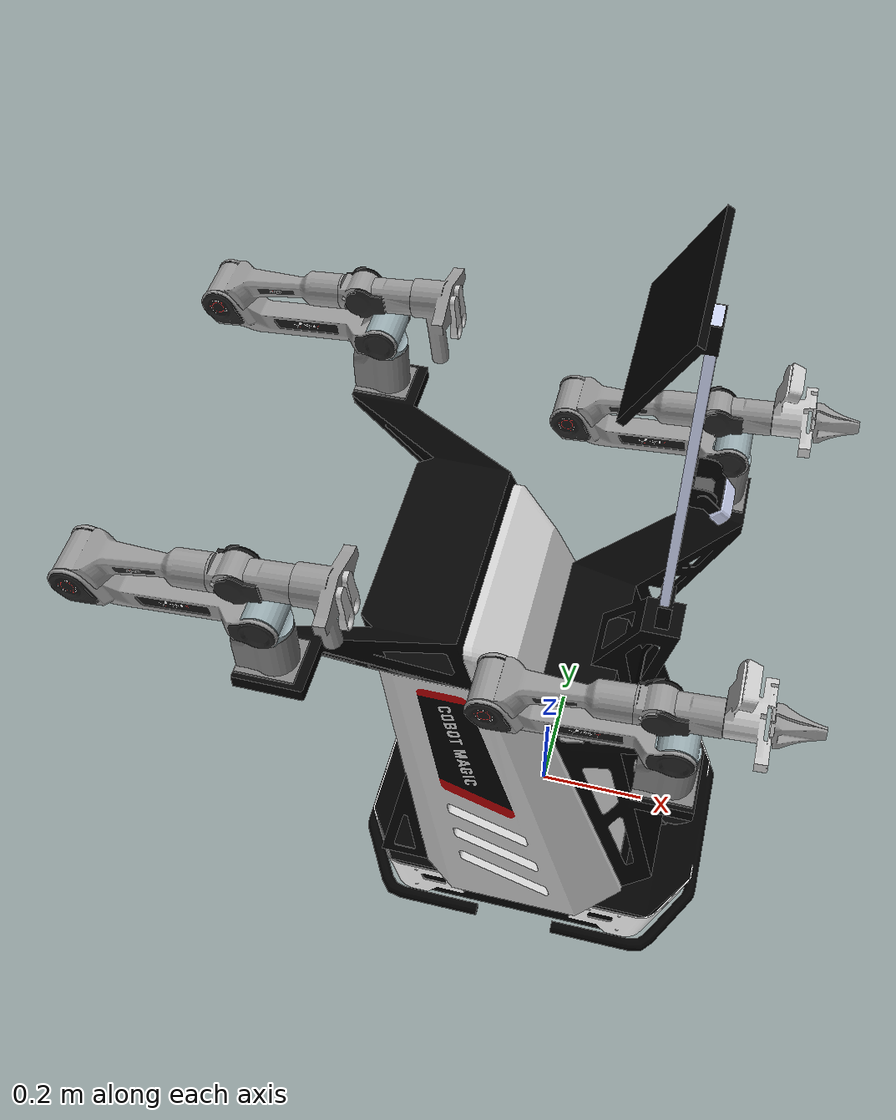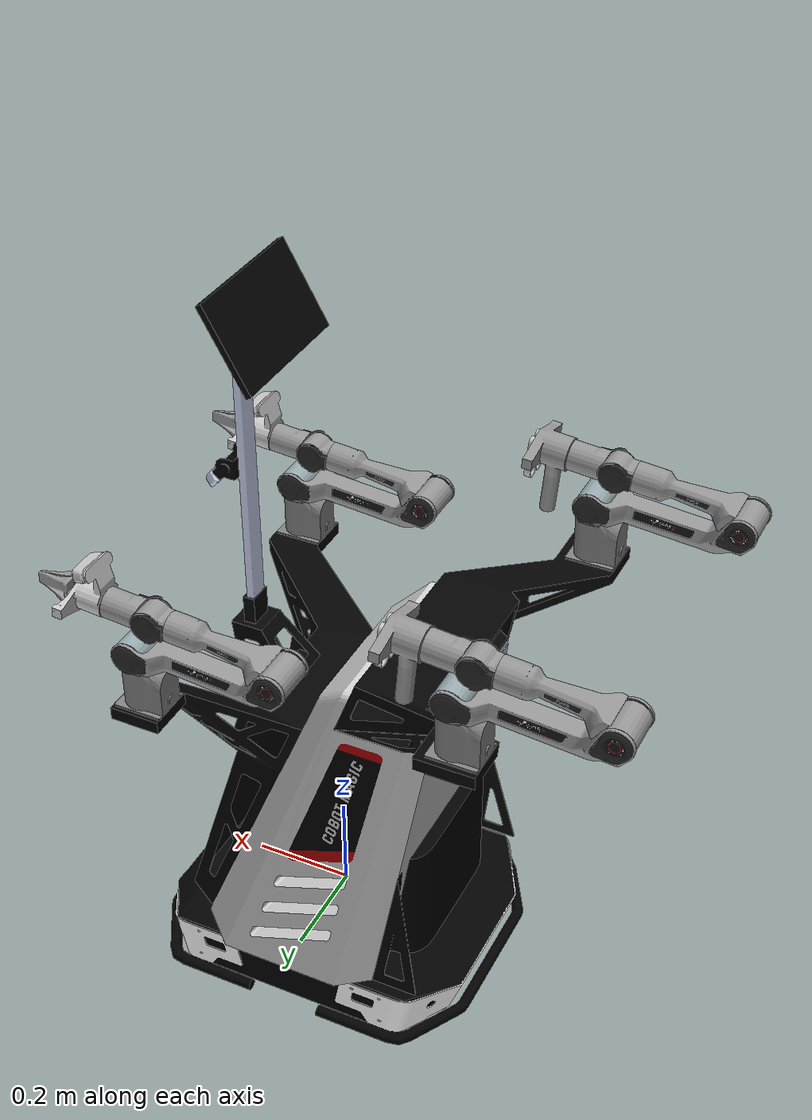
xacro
<?xml version="1.0"?>
<robot name="robot"
  xmlns:xacro="http://www.ros.org/wiki/xacro">

  <xacro:arg name="robot_model" default="agilex" />

  <xacro:property name="robot_model" value="$(arg robot_model)" />

  <!-- ======================== arx (ARX robotics) ======================== -->
  <xacro:if value="${'arx' == robot_model}">
    <xacro:include filename="providers/arx.xacro" />
  </xacro:if>

  <!-- ======================== agilex (Agilex: Aloha, Piper) ======================== -->
  <xacro:if value="${'agilex' == robot_model}">
    <xacro:include filename="providers/agilex.xacro" />
  </xacro:if>

  <!-- ======================== franka (Franka Robotics) ======================== -->
  <xacro:if value="${'franka' == robot_model}">
    <xacro:include filename="providers/franka.xacro" />
  </xacro:if>

  <!-- ======================== genie (AgiBot Genie series, e.g. G2) ======================== -->
  <xacro:if value="${'genie' == robot_model}">
    <xacro:include filename="providers/genie.xacro" />
  </xacro:if>

  <!-- ======================== universal_robots (UR series) ======================== -->
  <xacro:if value="${'universal_robots' == robot_model}">
    <xacro:include filename="providers/universal_robots.xacro" />
  </xacro:if>

  <!-- ======================== generic urdf (any *_description package) ======================== -->
  <xacro:if value="${'urdf' == robot_model}">
    <xacro:include filename="providers/urdf.xacro" />
  </xacro:if>

  <!-- ======================== generic xacro file ======================== -->
  <xacro:if value="${'xacro_file' == robot_model}">
    <xacro:include filename="providers/xacro_file.xacro" />
  </xacro:if>

</robot>

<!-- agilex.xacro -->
<robot xmlns:xacro="http://www.ros.org/wiki/xacro">

  <xacro:arg name="arm"     default="aloha" />
  <xacro:arg name="gripper" default="with_gripper" />

  <xacro:property name="arm"     value="$(arg arm)" />
  <xacro:property name="gripper" value="$(arg gripper)" />

  <xacro:if value="${'aloha' == arm}">
    <xacro:include filename="$(find genie_sim_robot_model)/robots/agilex/aloha/aloha.urdf.xacro" />
  </xacro:if>

  <xacro:if value="${'piper' == arm}">
    <xacro:if value="${'with_gripper' == gripper}">
      <xacro:include filename="$(find genie_sim_robot_model)/robots/agilex/piper/piper.urdf.xacro" />
    </xacro:if>
    <xacro:if value="${'no_gripper' == gripper}">
      <xacro:include filename="$(find genie_sim_robot_model)/robots/agilex/piper/piper_no_gripper.urdf.xacro" />
    </xacro:if>
  </xacro:if>

</robot>

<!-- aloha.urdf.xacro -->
<robot name="agilex_aloha"
  xmlns:xacro="http://www.ros.org/wiki/xacro">

  <xacro:property name="mesh_dir" value="package://genie_sim_robot_model/robots/agilex/aloha/meshes" />

  <xacro:macro name="aloha_arm"
    params="prefix parent mount_xyz mount_rpy gripper_mesh_subdir gripper7_xyz gripper8_xyz gripper7_rpy:='1.5708 0 1.5708' gripper8_rpy:='-1.5708 0 1.5708'">

    <link name="arm_${prefix}_base_link">
      <inertial>
        <origin xyz="-0.00979274765955341 1.82905827587138E-06 0.0410100126360189" rpy="0 0 0" />
        <mass value="0.162548567403693" />
        <inertia ixx="0.000226596924525071" ixy="-7.33972270153965E-08" ixz="2.13249977802622E-06"
          iyy="0.000269444772561524" iyz="8.15169009611054E-09" izz="0.000222318258878636" />
      </inertial>
      <visual>
        <origin xyz="0 0 0" rpy="0 0 0" />
        <geometry>
          <mesh filename="${mesh_dir}/base_link.dae" />
        </geometry>
        <material_override><roughness>0.45</roughness><metallic>0.85</metallic></material_override>
      </visual>
    </link>
    <joint name="arm_${prefix}_base_joint" type="fixed">
      <origin xyz="${mount_xyz}" rpy="${mount_rpy}" />
      <parent link="${parent}" />
      <child link="arm_${prefix}_base_link" />
    </joint>

    <link name="arm_${prefix}_link1">
      <inertial>
        <origin xyz="0.00131676031927024 0.000310288842008612 -0.00922874512303437" rpy="0 0 0" />
        <mass value="0.0978679932242825" />
        <inertia ixx="7.76684558296782E-05" ixy="1.09084650459924E-07" ixz="-1.9748053243241E-06"
          iyy="9.24967780161547E-05" iyz="9.91284646834582E-07" izz="8.24589062407807E-05" />
      </inertial>
      <visual>
        <origin xyz="0 0 0" rpy="0 0 0" />
        <geometry>
          <mesh filename="${mesh_dir}/link1.dae" />
        </geometry>
        <material_override><roughness>0.45</roughness><metallic>0.85</metallic></material_override>
      </visual>
    </link>
    <joint name="arm_${prefix}_joint1" type="revolute">
      <origin xyz="0 0 0.123" rpy="0 0 -1.5708" />
      <parent link="arm_${prefix}_base_link" />
      <child link="arm_${prefix}_link1" />
      <axis xyz="0 0 1" />
      <limit lower="-2.618" upper="2.618" effort="100" velocity="3" />
    </joint>

    <link name="arm_${prefix}_link2">
      <inertial>
        <origin xyz="0.148793602378802 -0.00242026983944119 0.00175154638467948" rpy="0 0 0" />
        <mass value="0.290888938633388" />
        <inertia ixx="0.000148959640166183" ixy="-7.37750384371657E-05" ixz="-9.68688405196236E-07"
          iyy="0.00172800946632652" iyz="-1.09692225564224E-06" izz="0.0017754628344594" />
      </inertial>
      <visual>
        <origin xyz="0 0 0" rpy="0 0 0" />
        <geometry>
          <mesh filename="${mesh_dir}/link2.dae" />
        </geometry>
        <material_override><roughness>0.45</roughness><metallic>0.85</metallic></material_override>
      </visual>
    </link>
    <joint name="arm_${prefix}_joint2" type="revolute">
      <origin xyz="0 0 0" rpy="1.5708 0 -1.5708" />
      <parent link="arm_${prefix}_link1" />
      <child link="arm_${prefix}_link2" />
      <axis xyz="0 0 1" />
      <limit lower="0" upper="3.14" effort="100" velocity="3" />
    </joint>

    <link name="arm_${prefix}_link3">
      <inertial>
        <origin xyz="-0.0996835215213704 0.0349477226691318 0.000508025815507312" rpy="0 0 0" />
        <mass value="0.290847697793211" />
        <inertia ixx="0.000107879011637167" ixy="2.92669521203626E-05" ixz="6.825922326238E-07"
          iyy="0.000214751671792086" iyz="-7.78469047878196E-07" izz="0.000241923439340319" />
      </inertial>
      <visual>
        <origin xyz="0 0 0" rpy="0 0 0" />
        <geometry>
          <mesh filename="${mesh_dir}/link3.dae" />
        </geometry>
        <material_override><roughness>0.45</roughness><metallic>0.85</metallic></material_override>
      </visual>
    </link>
    <joint name="arm_${prefix}_joint3" type="revolute">
      <origin xyz="0.28358 0.028726 0" rpy="0 0 0.10095" />
      <parent link="arm_${prefix}_link2" />
      <child link="arm_${prefix}_link3" />
      <axis xyz="0 0 1" />
      <limit lower="-2.697" upper="0" effort="100" velocity="3" />
    </joint>

    <link name="arm_${prefix}_link4">
      <inertial>
        <origin xyz="0.000276464622387979 -0.00102803669324875 -0.00472830700561663" rpy="0 0 0" />
        <mass value="0.127087348341362" />
        <inertia ixx="3.82011730423416E-05" ixy="-4.92358350897513E-08" ixz="4.89589432973119E-08"
          iyy="4.87048555222578E-05" iyz="6.70802942500512E-08" izz="4.10592077565559E-05" />
      </inertial>
      <visual>
        <origin xyz="0 0 0" rpy="0 0 0" />
        <geometry>
          <mesh filename="${mesh_dir}/link4.dae" />
        </geometry>
        <material_override><roughness>0.45</roughness><metallic>0.85</metallic></material_override>
      </visual>
    </link>
    <joint name="arm_${prefix}_joint4" type="revolute">
      <origin xyz="-0.24221 0.068514 0" rpy="-1.5708 0 1.3826" />
      <parent link="arm_${prefix}_link3" />
      <child link="arm_${prefix}_link4" />
      <axis xyz="0 0 1" />
      <limit lower="-1.832" upper="1.832" effort="100" velocity="3" />
    </joint>

    <link name="arm_${prefix}_link5">
      <inertial>
        <origin xyz="8.82262433516967E-05 0.0566829014808256 -0.00196119720482461" rpy="0 0 0" />
        <mass value="0.144711242639457" />
        <inertia ixx="4.39644313662493E-05" ixy="-3.59259686444846E-08" ixz="-1.89747741386183E-08"
          iyy="5.63173920951307E-05" iyz="-2.1540716689785E-07" izz="4.88713664675268E-05" />
      </inertial>
      <visual>
        <origin xyz="0 0 0" rpy="0 0 0" />
        <geometry>
          <mesh filename="${mesh_dir}/link5.dae" />
        </geometry>
        <material_override><roughness>0.45</roughness><metallic>0.85</metallic></material_override>
      </visual>
    </link>
    <joint name="arm_${prefix}_joint5" type="revolute">
      <origin xyz="0 0 0" rpy="1.5708 0 0" />
      <parent link="arm_${prefix}_link4" />
      <child link="arm_${prefix}_link5" />
      <axis xyz="0 0 1" />
      <limit lower="-1.22" upper="1.22" effort="100" velocity="3" />
    </joint>

    <link name="arm_${prefix}_link6">
      <inertial>
        <origin xyz="0.00103120214523473 0.0121761387587524 0.0315480874960164" rpy="0 0 0" />
        <mass value="0.195187143240719" />
        <inertia ixx="6.43790256535539E-05" ixy="-1.2366166157046E-06" ixz="1.97664606328472E-07"
          iyy="0.000126146396374301" iyz="2.41157078516408E-06" izz="0.000154087076816444" />
      </inertial>
      <visual>
        <origin xyz="0 0 0" rpy="0 0 0" />
        <geometry>
          <mesh filename="${mesh_dir}/${gripper_mesh_subdir}/link6.dae" />
        </geometry>
        <material_override><roughness>0.05</roughness><metallic>1.0</metallic></material_override>
      </visual>
    </link>
    <joint name="arm_${prefix}_joint6" type="revolute">
      <origin xyz="0 0.091 0.0014165" rpy="-1.5708 -1.5708 0" />
      <parent link="arm_${prefix}_link5" />
      <child link="arm_${prefix}_link6" />
      <axis xyz="0 0 1" />
      <limit lower="-3.14" upper="3.14" effort="100" velocity="3" />
    </joint>

    <link name="arm_${prefix}_end_link">
      <inertial>
        <origin xyz="0 0 0" rpy="0 0 0" />
        <mass value="1e-6" />
        <inertia ixx="1e-9" ixy="0" ixz="0" iyy="1e-9" iyz="0" izz="1e-9" />
      </inertial>
    </link>
    <joint name="arm_${prefix}_end_fixed" type="fixed">
      <origin xyz="0 0 0" rpy="0 0 0" />
      <parent link="arm_${prefix}_link6" />
      <child link="arm_${prefix}_end_link" />
    </joint>

    <link name="gripper_${prefix}_base_link">
      <inertial>
        <origin xyz="0 0 0" rpy="0 0 0" />
        <mass value="1e-6" />
        <inertia ixx="1e-9" ixy="0" ixz="0" iyy="1e-9" iyz="0" izz="1e-9" />
      </inertial>
    </link>
    <joint name="gripper_${prefix}_base_fixed" type="fixed">
      <origin xyz="0 0 0" rpy="0 0 0" />
      <parent link="arm_${prefix}_end_link" />
      <child link="gripper_${prefix}_base_link" />
    </joint>

    <xacro:property name="active_mesh" value="link7" />
    <xacro:property name="passive_mesh" value="link8" />

    <link name="gripper_${prefix}_active_link">
      <inertial>
        <origin xyz="-0.000277778383727112 -0.0467673043650824 -0.00921029491873201" rpy="0 0 0" />
        <mass value="0.02648229234527" />
        <inertia ixx="9.99787479924589E-06" ixy="-1.57548495096104E-07" ixz="-2.71342775003487E-08"
          iyy="6.1795212293655E-06" iyz="-1.58939803580081E-06" izz="1.42102717246564E-05" />
      </inertial>
      <visual>
        <origin xyz="0 0 0" rpy="0 0 0" />
        <geometry>
          <mesh filename="${mesh_dir}/${gripper_mesh_subdir}/${active_mesh}.dae" />
        </geometry>
        <material_override><roughness>0.05</roughness><metallic>1.0</metallic></material_override>
      </visual>
      <xacro:if value="${gripper_mesh_subdir == 'piper_slave_meshes'}">
        <collision>
          <origin xyz="0 0 0" rpy="0 0 0" />
          <geometry>
            <mesh filename="${mesh_dir}/piper_slave_meshes/convex/${active_mesh}_collision.STL" />
          </geometry>
        </collision>
      </xacro:if>
      <xacro:if value="${gripper_mesh_subdir == 'piper_master_meshes'}">
        <collision>
          <origin xyz="0 0 0" rpy="0 0 0" />
          <geometry>
            <mesh filename="${mesh_dir}/piper_master_meshes/${active_mesh}.dae" />
          </geometry>
        </collision>
      </xacro:if>
    </link>
    <joint name="gripper_${prefix}_active_joint" type="prismatic">
      <origin xyz="${gripper7_xyz}" rpy="${gripper7_rpy}" />
      <parent link="gripper_${prefix}_base_link" />
      <child link="gripper_${prefix}_active_link" />
      <axis xyz="0 0 -1" />
      <limit lower="0" upper="0.04" effort="10" velocity="1" />
    </joint>

    <link name="gripper_${prefix}_passive_link">
      <inertial>
        <origin xyz="0.000277816920932317 0.0467673824063769 -0.00921030054508036" rpy="0 0 0" />
        <mass value="0.0264822021416248" />
        <inertia ixx="9.99779119357223E-06" ixy="-1.57542283433504E-07" ixz="2.71367446701359E-08"
          iyy="6.17952441557932E-06" iyz="1.58939319453383E-06" izz="1.4210192754512E-05" />
      </inertial>
      <visual>
        <origin xyz="0 0 0" rpy="0 0 0" />
        <geometry>
          <mesh filename="${mesh_dir}/${gripper_mesh_subdir}/${passive_mesh}.dae" />
        </geometry>
        <material_override><roughness>0.05</roughness><metallic>1.0</metallic></material_override>
      </visual>
      <xacro:if value="${gripper_mesh_subdir == 'piper_slave_meshes'}">
        <collision>
          <origin xyz="0 0 0" rpy="0 0 0" />
          <geometry>
            <mesh filename="${mesh_dir}/piper_slave_meshes/convex/${passive_mesh}_collision.STL" />
          </geometry>
        </collision>
      </xacro:if>
      <xacro:if value="${gripper_mesh_subdir == 'piper_master_meshes'}">
        <collision>
          <origin xyz="0 0 0" rpy="0 0 0" />
          <geometry>
            <mesh filename="${mesh_dir}/piper_master_meshes/${passive_mesh}.dae" />
          </geometry>
        </collision>
      </xacro:if>
    </link>
    <joint name="gripper_${prefix}_passive_joint" type="prismatic">
      <origin xyz="${gripper8_xyz}" rpy="${gripper8_rpy}" />
      <parent link="gripper_${prefix}_base_link" />
      <child link="gripper_${prefix}_passive_link" />
      <axis xyz="0 0 1" />
      <limit lower="-0.04" upper="0" effort="10" velocity="1" />
      <mimic joint="gripper_${prefix}_active_joint" multiplier="-1" offset="0" />
    </joint>
  </xacro:macro>

  <link name="base_link">
    <visual>
      <origin xyz="0 0 0" rpy="0 0 0"/>
      <geometry><sphere radius="0.001"/></geometry>
    </visual>
  </link>

  <link name="base_link_inertia">
    <inertial>
      <origin xyz="0.015 -0.028 0.4" rpy="0 0 0" />
      <mass value="11.2" />
      <inertia ixx="1.04" ixy="0" ixz="0" iyy="1.10" iyz="0" izz="0.38" />
    </inertial>
    <visual>
      <origin xyz="0 0 0.168" rpy="0 0 3.14" />
      <geometry>
        <mesh filename="${mesh_dir}/body.dae" />
      </geometry>
        <material_override><roughness>0.55</roughness><metallic>0.0</metallic></material_override>
    </visual>
  </link>
  <joint name="base_link_inertia_fixed" type="fixed">
    <origin xyz="0 0 -0.15" rpy="0 0 0" />
    <parent link="base_link" />
    <child link="base_link_inertia" />
  </joint>

  <link name="chassis_link">
    <inertial>
      <origin xyz="-0.037979422359657 -0.00314478249004299 -0.0259198905321653" rpy="0 0 0" />
      <mass value="2.4239552885625" />
      <inertia
        ixx="0.0691541872284658"
        ixy="0.000423483205221006"
        ixz="-0.000201466160013829"
        iyy="0.0588857794520233"
        iyz="0.000250049528136794"
        izz="0.125132015686105" />
    </inertial>
    <visual>
      <origin xyz="0 0 0" rpy="1.57 0 0" />
      <geometry>
        <mesh filename="${mesh_dir}/tracer_base_link_no_wheel.dae" />
      </geometry>
        <material_override><roughness>0.2</roughness><metallic>0.0</metallic></material_override>
    </visual>
  </link>
  <joint name="chassis_joint" type="fixed">
    <origin xyz="0 0 0" rpy="0 0 0" />
    <parent link="base_link" />
    <child link="chassis_link" />
  </joint>

  <link name="chassis_rwheel_link">
    <!-- Tracer2 drive wheel inertia (official aloha_tracer2 URDF):
         m=0.148 kg, cylinder r=0.06 m h=0.084 m. The official URDF
         numbers come from SolidWorks export. -->
    <inertial>
      <mass value="0.148" />
      <origin xyz="0 0 0" />
      <inertia ixx="0.000131" ixy="0" ixz="0" iyy="0.000238" iyz="0" izz="0.000131" />
    </inertial>
    <visual>
      <origin xyz="0 0 0" rpy="0 0 0" />
      <geometry>
        <mesh filename="${mesh_dir}/tracer_wheel.dae" />
      </geometry>
        <material_override><roughness>0.95</roughness><metallic>0.0</metallic></material_override>
    </visual>
    <collision>
      <origin xyz="0 0 0" rpy="1.5708 0 0" />
      <geometry>
        <cylinder radius="0.06" length="0.084" />
      </geometry>
    </collision>
  </link>
  <joint name="chassis_rwheel_joint" type="continuous">
    <parent link="chassis_link" />
    <child link="chassis_rwheel_link" />
    <origin xyz="0 -0.17 -0.082" rpy="0 0 0" />
    <axis xyz="0 1 0" />
    <dynamics damping="0.05" friction="0.05" />
  </joint>

  <link name="chassis_lwheel_link">
    <!-- Mirror of chassis_rwheel_link — same wheel geometry, same mass. -->
    <inertial>
      <mass value="0.148" />
      <origin xyz="0 0 0" />
      <inertia ixx="0.000131" ixy="0" ixz="0" iyy="0.000238" iyz="0" izz="0.000131" />
    </inertial>
    <visual>
      <origin xyz="0 0 0" rpy="0 0 0" />
      <geometry>
        <mesh filename="${mesh_dir}/tracer_wheel.dae" />
      </geometry>
        <material_override><roughness>0.95</roughness><metallic>0.0</metallic></material_override>
    </visual>
    <collision>
      <origin xyz="0 0 0" rpy="1.5708 0 0" />
      <geometry>
        <cylinder radius="0.06" length="0.084" />
      </geometry>
    </collision>
  </link>
  <joint name="chassis_lwheel_joint" type="continuous">
    <parent link="chassis_link" />
    <child link="chassis_lwheel_link" />
    <origin xyz="0 0.17 -0.082" rpy="0 0 0" />
    <axis xyz="0 1 0" />
    <dynamics damping="0.05" friction="0.05" />
  </joint>

  <xacro:macro name="castor_assembly" params="prefix origin_xyz origin_rpy wheel_xyz">
    <link name="chassis_${prefix}_castor_link">
      <inertial>
        <mass value="0.2" />
        <origin xyz="0 0 0" />
        <inertia ixx="2.4e-4" ixy="0" ixz="0" iyy="2.4e-4" iyz="0" izz="2.4e-4" />
      </inertial>
      <visual>
        <geometry>
          <mesh filename="${mesh_dir}/castor_joint.dae" />
        </geometry>
        <material_override><roughness>0.7</roughness><metallic>0.0</metallic></material_override>
      </visual>
    </link>
    <joint name="chassis_${prefix}_castor_joint" type="continuous">
      <origin xyz="${origin_xyz}" rpy="${origin_rpy}" />
      <parent link="chassis_link" />
      <child link="chassis_${prefix}_castor_link" />
      <axis xyz="0 1 0" />
      <dynamics damping="0.1" friction="0.1" />
    </joint>
    <link name="chassis_${prefix}_link1">
      <inertial>
        <mass value="0.086" />
        <origin xyz="0 0 0" />
        <inertia ixx="4.1e-5" ixy="0" ixz="0" iyy="4.1e-5" iyz="0" izz="6.0e-5" />
      </inertial>
      <visual>
        <geometry>
          <mesh filename="${mesh_dir}/castor.dae" />
        </geometry>
        <material_override><roughness>0.95</roughness><metallic>0.0</metallic></material_override>
      </visual>
      <collision>
        <origin xyz="0 0 0" rpy="0 0 0" />
        <geometry>
          <cylinder radius="0.0375" length="0.053" />
        </geometry>
      </collision>
    </link>
    <joint name="chassis_${prefix}_joint1" type="continuous">
      <parent link="chassis_${prefix}_castor_link" />
      <child link="chassis_${prefix}_link1" />
      <origin xyz="${wheel_xyz}" rpy="0 0 0" />
      <axis xyz="0 0 1" />
      <dynamics damping="0.05" friction="0.05" />
    </joint>
  </xacro:macro>

  <xacro:castor_assembly prefix="lwheel_front" origin_xyz="0.19 0.17 -0.038" origin_rpy="-1.57 0 0"
    wheel_xyz="-0.0218084 0.077 0" />
  <xacro:castor_assembly prefix="rwheel_front" origin_xyz="0.18955 -0.17 -0.0380886"
    origin_rpy="-1.57 0 0" wheel_xyz="-0.0218084 0.077 0" />
  <xacro:castor_assembly prefix="rwheel_rear" origin_xyz="-0.18955 -0.17 -0.0380886"
    origin_rpy="-1.57 0 0" wheel_xyz="-0.0218084 0.077 0" />
  <xacro:castor_assembly prefix="lwheel_rear" origin_xyz="-0.18955 0.17 -0.0380886"
    origin_rpy="-1.57 0 0" wheel_xyz="-0.0218084 0.077 0" />

  <link name="arm_base_link">
    <inertial>
      <origin xyz="0 0 0" rpy="0 0 0"/>
      <mass value="1e-4"/>
      <inertia ixx="1e-6" iyy="1e-6" izz="1e-6" ixy="0" ixz="0" iyz="0"/>
    </inertial>
  </link>
  <joint name="arm_base_joint" type="fixed">
    <origin xyz="0 0 -0.15" rpy="0 0 0" />
    <parent link="base_link" />
    <child link="arm_base_link" />
  </joint>

  <xacro:aloha_arm prefix="fl" parent="arm_base_link"
    mount_xyz="0.23875 0.3 0.775" mount_rpy="0.0 0.0 0.0"
    gripper_mesh_subdir="piper_slave_meshes"
    gripper7_xyz="0 0 0.13503" gripper8_xyz="0 0 0.13503" />

  <xacro:aloha_arm prefix="fr" parent="arm_base_link"
    mount_xyz="0.23875 -0.3 0.775" mount_rpy="0.0 0.0 0.0"
    gripper_mesh_subdir="piper_slave_meshes"
    gripper7_xyz="0 0 0.13503" gripper8_xyz="0 0 0.13503" />

  <xacro:aloha_arm prefix="bl" parent="arm_base_link"
    mount_xyz="-0.379 0.3075 0.901" mount_rpy="0.0 0.0 0.0"
    gripper_mesh_subdir="piper_master_meshes"
    gripper7_xyz="0 -0.043177 0.0685" gripper8_xyz="0 -0.043177 0.0685" />

  <xacro:aloha_arm prefix="br" parent="arm_base_link"
    mount_xyz="-0.379 -0.3075 0.901" mount_rpy="0.0 0.0 0.0"
    gripper_mesh_subdir="piper_master_meshes"
    gripper7_xyz="0 -0.043177 0.0685" gripper8_xyz="0 -0.043177 0.0685" />

</robot>
